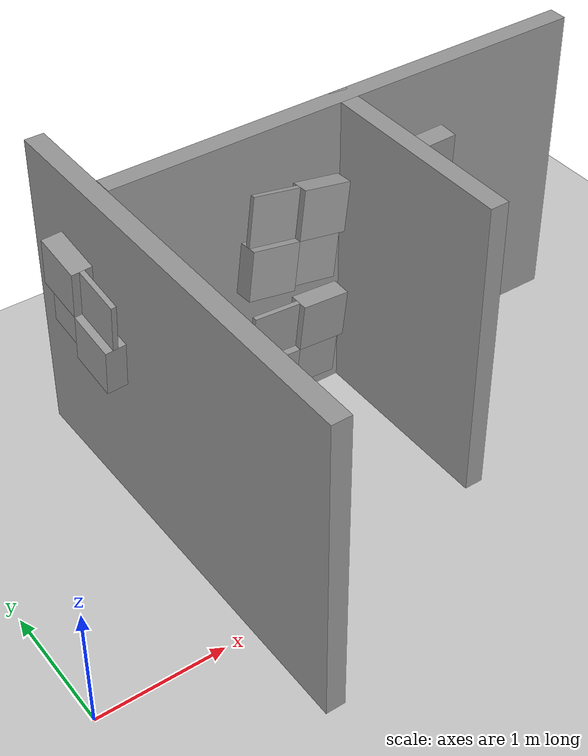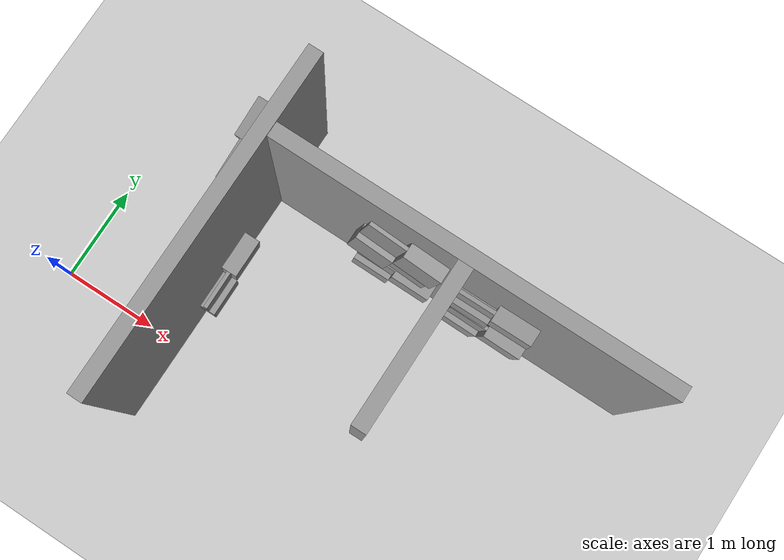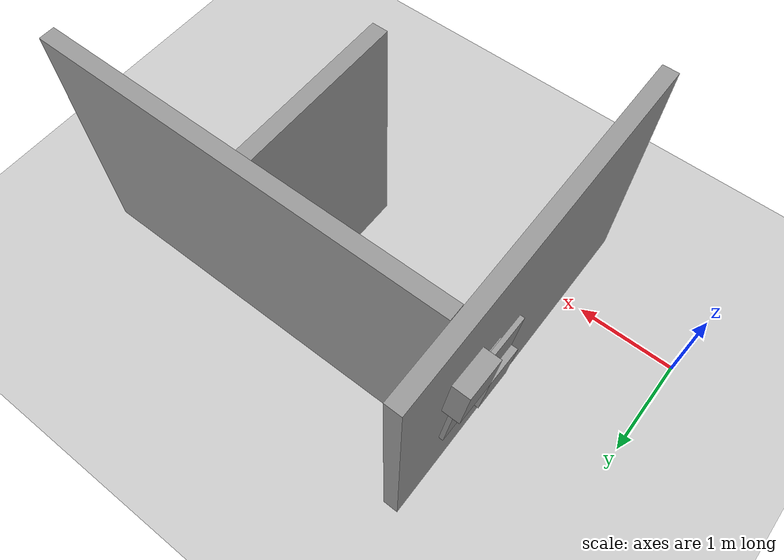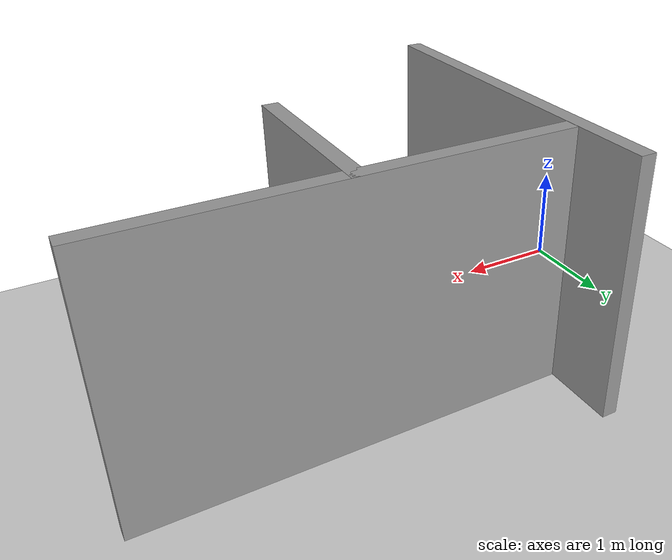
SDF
<sdf version="1.7">
 <world name="default">
  <model name="demo_clean">
   <static>1</static>
   <link name="Wall_11">
    <collision name="Wall_11_Collision">
     <geometry><box><size>4 0.15 2.5</size></box></geometry>
     <pose>0 0 1.25 0 -0 0</pose>
     <surface>
      <friction>
       <ode><mu>1</mu><mu2>1</mu2><fdir1>0 0 0</fdir1><slip1>0</slip1><slip2>0</slip2></ode>
       <torsional>
        <coefficient>1</coefficient>
        <patch_radius>0</patch_radius>
        <surface_radius>0</surface_radius>
        <use_patch_radius>1</use_patch_radius>
        <ode><slip>0</slip></ode>
       </torsional>
      </friction>
      <bounce><restitution_coefficient>0</restitution_coefficient><threshold>1e+06</threshold></bounce>
      <contact>
       <collide_without_contact>0</collide_without_contact>
       <collide_without_contact_bitmask>1</collide_without_contact_bitmask>
       <collide_bitmask>1</collide_bitmask>
       <ode>
        <soft_cfm>0</soft_cfm>
        <soft_erp>0.2</soft_erp>
        <kp>1e+13</kp>
        <kd>1</kd>
        <max_vel>0.01</max_vel>
        <min_depth>0</min_depth>
       </ode>
       <bullet>
        <split_impulse>1</split_impulse>
        <split_impulse_penetration_threshold>-0.01</split_impulse_penetration_threshold>
        <soft_cfm>0</soft_cfm>
        <soft_erp>0.2</soft_erp>
        <kp>1e+13</kp>
        <kd>1</kd>
       </bullet>
      </contact>
     </surface>
    </collision>
    <visual name="Wall_11_Visual">
     <geometry><box><size>4 0.15 2.5</size></box></geometry>
     <material>
      <script><name>Gazebo/Grey</name><uri>file://media/materials/scripts/gazebo.material</uri></script>
      <ambient>1 1 1 1</ambient>
      <shader type="pixel"><normal_map>default</normal_map></shader>
     </material>
     <pose>0 0 1.25 0 -0 0</pose>
    </visual>
    <pose>3.37851 1.89118 0 0 -0 3.14159</pose>
   </link>
   <link name="Wall_27">
    <collision name="Wall_27_Collision">
     <geometry><box><size>3.5 0.15 2.5</size></box></geometry>
     <pose>0 0 1.25 0 -0 0</pose>
     <surface>
      <friction>
       <ode><mu>1</mu><mu2>1</mu2><fdir1>0 0 0</fdir1><slip1>0</slip1><slip2>0</slip2></ode>
       <torsional>
        <coefficient>1</coefficient>
        <patch_radius>0</patch_radius>
        <surface_radius>0</surface_radius>
        <use_patch_radius>1</use_patch_radius>
        <ode><slip>0</slip></ode>
       </torsional>
      </friction>
      <bounce><restitution_coefficient>0</restitution_coefficient><threshold>1e+06</threshold></bounce>
      <contact>
       <collide_without_contact>0</collide_without_contact>
       <collide_without_contact_bitmask>1</collide_without_contact_bitmask>
       <collide_bitmask>1</collide_bitmask>
       <ode>
        <soft_cfm>0</soft_cfm>
        <soft_erp>0.2</soft_erp>
        <kp>1e+13</kp>
        <kd>1</kd>
        <max_vel>0.01</max_vel>
        <min_depth>0</min_depth>
       </ode>
       <bullet>
        <split_impulse>1</split_impulse>
        <split_impulse_penetration_threshold>-0.01</split_impulse_penetration_threshold>
        <soft_cfm>0</soft_cfm>
        <soft_erp>0.2</soft_erp>
        <kp>1e+13</kp>
        <kd>1</kd>
       </bullet>
      </contact>
     </surface>
    </collision>
    <visual name="Wall_27_Visual">
     <geometry><box><size>3.5 0.15 2.5</size></box></geometry>
     <material>
      <script><name>Gazebo/Grey</name><uri>file://media/materials/scripts/gazebo.material</uri></script>
      <ambient>1 1 1 1</ambient>
      <shader type="pixel"><normal_map>default</normal_map></shader>
     </material>
     <pose>0 0 1.25 0 -0 0</pose>
    </visual>
    <pose>1.30016 0.927106 0 0 0 -1.5708</pose>
   </link>
   <link name="Wall_46">
    <collision name="Wall_46_Collision">
     <geometry><box><size>1.75 0.15 2.5</size></box></geometry>
     <pose>0 0 1.25 0 -0 0</pose>
     <surface>
      <friction>
       <ode><mu>1</mu><mu2>1</mu2><fdir1>0 0 0</fdir1><slip1>0</slip1><slip2>0</slip2></ode>
       <torsional>
        <coefficient>1</coefficient>
        <patch_radius>0</patch_radius>
        <surface_radius>0</surface_radius>
        <use_patch_radius>1</use_patch_radius>
        <ode><slip>0</slip></ode>
       </torsional>
      </friction>
      <bounce><restitution_coefficient>0</restitution_coefficient><threshold>1e+06</threshold></bounce>
      <contact>
       <collide_without_contact>0</collide_without_contact>
       <collide_without_contact_bitmask>1</collide_without_contact_bitmask>
       <collide_bitmask>1</collide_bitmask>
       <ode>
        <soft_cfm>0</soft_cfm>
        <soft_erp>0.2</soft_erp>
        <kp>1e+13</kp>
        <kd>1</kd>
        <max_vel>0.01</max_vel>
        <min_depth>0</min_depth>
       </ode>
       <bullet>
        <split_impulse>1</split_impulse>
        <split_impulse_penetration_threshold>-0.01</split_impulse_penetration_threshold>
        <soft_cfm>0</soft_cfm>
        <soft_erp>0.2</soft_erp>
        <kp>1e+13</kp>
        <kd>1</kd>
       </bullet>
      </contact>
     </surface>
    </collision>
    <visual name="Wall_46_Visual">
     <geometry><box><size>1.75 0.15 2.5</size></box></geometry>
     <material>
      <script><name>Gazebo/Grey</name><uri>file://media/materials/scripts/gazebo.material</uri></script>
      <ambient>1 1 1 1</ambient>
      <shader type="pixel"><normal_map>default</normal_map></shader>
     </material>
     <pose>0 0 1.25 0 -0 0</pose>
    </visual>
    <pose>3.33603 1.08929 0 0 0 -1.5708</pose>
   </link>
  </model>
  <model name="ground_plane">
   <static>1</static>
   <link name="link">
    <collision name="collision">
     <geometry><plane><normal>0 0 1</normal><size>100 100</size></plane></geometry>
     <surface>
      <contact><collide_bitmask>65535</collide_bitmask></contact>
      <friction><ode><mu>100</mu><mu2>50</mu2></ode></friction>
     </surface>
    </collision>
    <visual name="visual">
     <cast_shadows>0</cast_shadows>
     <geometry><plane><normal>0 0 1</normal><size>100 100</size></plane></geometry>
     <material>
      <script><uri>file://media/materials/scripts/gazebo.material</uri><name>Gazebo/Grey</name></script>
     </material>
    </visual>
   </link>
  </model>
  <model name="wall_slate_23">
   <static>1</static>
   <link name="link_0">
    <inertial><mass>1</mass></inertial>
    <gravity>0</gravity>
    <visual name="visual">
     <pose>0 0.2 0.2 0 -0 0</pose>
     <geometry><box><size>0.16 0.4 0.4</size></box></geometry>
     <material>
      <lighting>1</lighting>
      <script><uri>file://media/materials/scripts/gazebo.material</uri><name>Gazebo/Grey</name></script>
      <shader type="pixel"><normal_map>__default__</normal_map></shader>
      <ambient>0.3 0.3 0.3 1</ambient>
      <diffuse>0.7 0.7 0.7 1</diffuse>
      <specular>0.01 0.01 0.01 1</specular>
      <emissive>0 0 0 1</emissive>
     </material>
    </visual>
    <visual name="ModelPreview_0::link_0::visual_1">
     <pose>0 0.2 -0.2 0 -0 0</pose>
     <geometry><box><size>0.04 0.4 0.4</size></box></geometry>
     <material>
      <lighting>1</lighting>
      <script><uri>file://media/materials/scripts/gazebo.material</uri><name>Gazebo/Grey</name></script>
      <shader type="pixel"><normal_map>__default__</normal_map></shader>
      <ambient>0.3 0.3 0.3 1</ambient>
      <diffuse>0.7 0.7 0.7 1</diffuse>
      <specular>0.01 0.01 0.01 1</specular>
      <emissive>0 0 0 1</emissive>
     </material>
    </visual>
    <visual name="ModelPreview_0::link_0::visual_2">
     <pose>0 -0.2 0.2 0 -0 0</pose>
     <geometry><box><size>0.04 0.4 0.4</size></box></geometry>
     <material>
      <lighting>1</lighting>
      <script><uri>file://media/materials/scripts/gazebo.material</uri><name>Gazebo/Grey</name></script>
      <shader type="pixel"><normal_map>__default__</normal_map></shader>
      <ambient>0.3 0.3 0.3 1</ambient>
      <diffuse>0.7 0.7 0.7 1</diffuse>
      <specular>0.01 0.01 0.01 1</specular>
      <emissive>0 0 0 1</emissive>
     </material>
    </visual>
    <visual name="ModelPreview_0::link_0::visual_3">
     <pose>0 -0.2 -0.2 0 -0 0</pose>
     <geometry><box><size>0.16 0.4 0.4</size></box></geometry>
     <material>
      <lighting>1</lighting>
      <script><uri>file://media/materials/scripts/gazebo.material</uri><name>Gazebo/Grey</name></script>
      <shader type="pixel"><normal_map>__default__</normal_map></shader>
      <ambient>0.3 0.3 0.3 1</ambient>
      <diffuse>0.7 0.7 0.7 1</diffuse>
      <specular>0.01 0.01 0.01 1</specular>
      <emissive>0 0 0 1</emissive>
     </material>
    </visual>
    <collision name="collision_2">
     <pose>0 -0.2 0.2 0 -0 0</pose>
     <geometry><box><size>0.04 0.4 0.4</size></box></geometry>
     <surface>
      <friction>
       <ode><mu>1</mu><mu2>1</mu2><fdir1>0 0 0</fdir1><slip1>0</slip1><slip2>0</slip2></ode>
       <torsional>
        <coefficient>1</coefficient>
        <patch_radius>0</patch_radius>
        <surface_radius>0</surface_radius>
        <use_patch_radius>1</use_patch_radius>
        <ode><slip>0</slip></ode>
       </torsional>
      </friction>
      <bounce><restitution_coefficient>0</restitution_coefficient><threshold>1e+06</threshold></bounce>
      <contact>
       <collide_without_contact>0</collide_without_contact>
       <collide_without_contact_bitmask>1</collide_without_contact_bitmask>
       <collide_bitmask>1</collide_bitmask>
       <ode>
        <soft_cfm>0</soft_cfm>
        <soft_erp>0.2</soft_erp>
        <kp>1e+13</kp>
        <kd>1</kd>
        <max_vel>0.01</max_vel>
        <min_depth>0</min_depth>
       </ode>
       <bullet>
        <split_impulse>1</split_impulse>
        <split_impulse_penetration_threshold>-0.01</split_impulse_penetration_threshold>
        <soft_cfm>0</soft_cfm>
        <soft_erp>0.2</soft_erp>
        <kp>1e+13</kp>
        <kd>1</kd>
       </bullet>
      </contact>
     </surface>
    </collision>
    <collision name="collision_1">
     <pose>0 0.2 -0.2 0 -0 0</pose>
     <geometry><box><size>0.04 0.4 0.4</size></box></geometry>
     <surface>
      <friction>
       <ode><mu>1</mu><mu2>1</mu2><fdir1>0 0 0</fdir1><slip1>0</slip1><slip2>0</slip2></ode>
       <torsional>
        <coefficient>1</coefficient>
        <patch_radius>0</patch_radius>
        <surface_radius>0</surface_radius>
        <use_patch_radius>1</use_patch_radius>
        <ode><slip>0</slip></ode>
       </torsional>
      </friction>
      <bounce><restitution_coefficient>0</restitution_coefficient><threshold>1e+06</threshold></bounce>
      <contact>
       <collide_without_contact>0</collide_without_contact>
       <collide_without_contact_bitmask>1</collide_without_contact_bitmask>
       <collide_bitmask>1</collide_bitmask>
       <ode>
        <soft_cfm>0</soft_cfm>
        <soft_erp>0.2</soft_erp>
        <kp>1e+13</kp>
        <kd>1</kd>
        <max_vel>0.01</max_vel>
        <min_depth>0</min_depth>
       </ode>
       <bullet>
        <split_impulse>1</split_impulse>
        <split_impulse_penetration_threshold>-0.01</split_impulse_penetration_threshold>
        <soft_cfm>0</soft_cfm>
        <soft_erp>0.2</soft_erp>
        <kp>1e+13</kp>
        <kd>1</kd>
       </bullet>
      </contact>
     </surface>
    </collision>
    <collision name="collision_4">
     <pose>0 0.2 0.2 0 -0 0</pose>
     <geometry><box><size>0.16 0.4 0.4</size></box></geometry>
     <surface>
      <friction>
       <ode><mu>1</mu><mu2>1</mu2><fdir1>0 0 0</fdir1><slip1>0</slip1><slip2>0</slip2></ode>
       <torsional>
        <coefficient>1</coefficient>
        <patch_radius>0</patch_radius>
        <surface_radius>0</surface_radius>
        <use_patch_radius>1</use_patch_radius>
        <ode><slip>0</slip></ode>
       </torsional>
      </friction>
      <bounce><restitution_coefficient>0</restitution_coefficient><threshold>1e+06</threshold></bounce>
      <contact>
       <collide_without_contact>0</collide_without_contact>
       <collide_without_contact_bitmask>1</collide_without_contact_bitmask>
       <collide_bitmask>1</collide_bitmask>
       <ode>
        <soft_cfm>0</soft_cfm>
        <soft_erp>0.2</soft_erp>
        <kp>1e+13</kp>
        <kd>1</kd>
        <max_vel>0.01</max_vel>
        <min_depth>0</min_depth>
       </ode>
       <bullet>
        <split_impulse>1</split_impulse>
        <split_impulse_penetration_threshold>-0.01</split_impulse_penetration_threshold>
        <soft_cfm>0</soft_cfm>
        <soft_erp>0.2</soft_erp>
        <kp>1e+13</kp>
        <kd>1</kd>
       </bullet>
      </contact>
     </surface>
    </collision>
    <collision name="collision_3">
     <pose>0 -0.2 -0.2 0 -0 0</pose>
     <geometry><box><size>0.16 0.4 0.4</size></box></geometry>
     <surface>
      <friction>
       <ode><mu>1</mu><mu2>1</mu2><fdir1>0 0 0</fdir1><slip1>0</slip1><slip2>0</slip2></ode>
       <torsional>
        <coefficient>1</coefficient>
        <patch_radius>0</patch_radius>
        <surface_radius>0</surface_radius>
        <use_patch_radius>1</use_patch_radius>
        <ode><slip>0</slip></ode>
       </torsional>
      </friction>
      <bounce><restitution_coefficient>0</restitution_coefficient><threshold>1e+06</threshold></bounce>
      <contact>
       <collide_without_contact>0</collide_without_contact>
       <collide_without_contact_bitmask>1</collide_without_contact_bitmask>
       <collide_bitmask>1</collide_bitmask>
       <ode>
        <soft_cfm>0</soft_cfm>
        <soft_erp>0.2</soft_erp>
        <kp>1e+13</kp>
        <kd>1</kd>
        <max_vel>0.01</max_vel>
        <min_depth>0</min_depth>
       </ode>
       <bullet>
        <split_impulse>1</split_impulse>
        <split_impulse_penetration_threshold>-0.01</split_impulse_penetration_threshold>
        <soft_cfm>0</soft_cfm>
        <soft_erp>0.2</soft_erp>
        <kp>1e+13</kp>
        <kd>1</kd>
       </bullet>
      </contact>
     </surface>
    </collision>
   </link>
   <pose>3.77851 1.71618 0.6 -0.12 0.04 -1.5659</pose>
  </model>
  <model name="wall_slate_34">
   <static>1</static>
   <link name="link_0">
    <inertial><mass>1</mass></inertial>
    <gravity>0</gravity>
    <visual name="visual">
     <pose>0 0.2 0.2 0 -0 0</pose>
     <geometry><box><size>0.16 0.4 0.4</size></box></geometry>
     <material>
      <lighting>1</lighting>
      <script><uri>file://media/materials/scripts/gazebo.material</uri><name>Gazebo/Grey</name></script>
      <shader type="pixel"><normal_map>__default__</normal_map></shader>
      <ambient>0.3 0.3 0.3 1</ambient>
      <diffuse>0.7 0.7 0.7 1</diffuse>
      <specular>0.01 0.01 0.01 1</specular>
      <emissive>0 0 0 1</emissive>
     </material>
    </visual>
    <visual name="ModelPreview_0::link_0::visual_1">
     <pose>0 0.2 -0.2 0 -0 0</pose>
     <geometry><box><size>0.04 0.4 0.4</size></box></geometry>
     <material>
      <lighting>1</lighting>
      <script><uri>file://media/materials/scripts/gazebo.material</uri><name>Gazebo/Grey</name></script>
      <shader type="pixel"><normal_map>__default__</normal_map></shader>
      <ambient>0.3 0.3 0.3 1</ambient>
      <diffuse>0.7 0.7 0.7 1</diffuse>
      <specular>0.01 0.01 0.01 1</specular>
      <emissive>0 0 0 1</emissive>
     </material>
    </visual>
    <visual name="ModelPreview_0::link_0::visual_2">
     <pose>0 -0.2 0.2 0 -0 0</pose>
     <geometry><box><size>0.04 0.4 0.4</size></box></geometry>
     <material>
      <lighting>1</lighting>
      <script><uri>file://media/materials/scripts/gazebo.material</uri><name>Gazebo/Grey</name></script>
      <shader type="pixel"><normal_map>__default__</normal_map></shader>
      <ambient>0.3 0.3 0.3 1</ambient>
      <diffuse>0.7 0.7 0.7 1</diffuse>
      <specular>0.01 0.01 0.01 1</specular>
      <emissive>0 0 0 1</emissive>
     </material>
    </visual>
    <visual name="ModelPreview_0::link_0::visual_3">
     <pose>0 -0.2 -0.2 0 -0 0</pose>
     <geometry><box><size>0.16 0.4 0.4</size></box></geometry>
     <material>
      <lighting>1</lighting>
      <script><uri>file://media/materials/scripts/gazebo.material</uri><name>Gazebo/Grey</name></script>
      <shader type="pixel"><normal_map>__default__</normal_map></shader>
      <ambient>0.3 0.3 0.3 1</ambient>
      <diffuse>0.7 0.7 0.7 1</diffuse>
      <specular>0.01 0.01 0.01 1</specular>
      <emissive>0 0 0 1</emissive>
     </material>
    </visual>
    <collision name="collision_2">
     <pose>0 -0.2 0.2 0 -0 0</pose>
     <geometry><box><size>0.04 0.4 0.4</size></box></geometry>
     <surface>
      <friction>
       <ode><mu>1</mu><mu2>1</mu2><fdir1>0 0 0</fdir1><slip1>0</slip1><slip2>0</slip2></ode>
       <torsional>
        <coefficient>1</coefficient>
        <patch_radius>0</patch_radius>
        <surface_radius>0</surface_radius>
        <use_patch_radius>1</use_patch_radius>
        <ode><slip>0</slip></ode>
       </torsional>
      </friction>
      <bounce><restitution_coefficient>0</restitution_coefficient><threshold>1e+06</threshold></bounce>
      <contact>
       <collide_without_contact>0</collide_without_contact>
       <collide_without_contact_bitmask>1</collide_without_contact_bitmask>
       <collide_bitmask>1</collide_bitmask>
       <ode>
        <soft_cfm>0</soft_cfm>
        <soft_erp>0.2</soft_erp>
        <kp>1e+13</kp>
        <kd>1</kd>
        <max_vel>0.01</max_vel>
        <min_depth>0</min_depth>
       </ode>
       <bullet>
        <split_impulse>1</split_impulse>
        <split_impulse_penetration_threshold>-0.01</split_impulse_penetration_threshold>
        <soft_cfm>0</soft_cfm>
        <soft_erp>0.2</soft_erp>
        <kp>1e+13</kp>
        <kd>1</kd>
       </bullet>
      </contact>
     </surface>
    </collision>
    <collision name="collision_1">
     <pose>0 0.2 -0.2 0 -0 0</pose>
     <geometry><box><size>0.04 0.4 0.4</size></box></geometry>
     <surface>
      <friction>
       <ode><mu>1</mu><mu2>1</mu2><fdir1>0 0 0</fdir1><slip1>0</slip1><slip2>0</slip2></ode>
       <torsional>
        <coefficient>1</coefficient>
        <patch_radius>0</patch_radius>
        <surface_radius>0</surface_radius>
        <use_patch_radius>1</use_patch_radius>
        <ode><slip>0</slip></ode>
       </torsional>
      </friction>
      <bounce><restitution_coefficient>0</restitution_coefficient><threshold>1e+06</threshold></bounce>
      <contact>
       <collide_without_contact>0</collide_without_contact>
       <collide_without_contact_bitmask>1</collide_without_contact_bitmask>
       <collide_bitmask>1</collide_bitmask>
       <ode>
        <soft_cfm>0</soft_cfm>
        <soft_erp>0.2</soft_erp>
        <kp>1e+13</kp>
        <kd>1</kd>
        <max_vel>0.01</max_vel>
        <min_depth>0</min_depth>
       </ode>
       <bullet>
        <split_impulse>1</split_impulse>
        <split_impulse_penetration_threshold>-0.01</split_impulse_penetration_threshold>
        <soft_cfm>0</soft_cfm>
        <soft_erp>0.2</soft_erp>
        <kp>1e+13</kp>
        <kd>1</kd>
       </bullet>
      </contact>
     </surface>
    </collision>
    <collision name="collision_4">
     <pose>0 0.2 0.2 0 -0 0</pose>
     <geometry><box><size>0.16 0.4 0.4</size></box></geometry>
     <surface>
      <friction>
       <ode><mu>1</mu><mu2>1</mu2><fdir1>0 0 0</fdir1><slip1>0</slip1><slip2>0</slip2></ode>
       <torsional>
        <coefficient>1</coefficient>
        <patch_radius>0</patch_radius>
        <surface_radius>0</surface_radius>
        <use_patch_radius>1</use_patch_radius>
        <ode><slip>0</slip></ode>
       </torsional>
      </friction>
      <bounce><restitution_coefficient>0</restitution_coefficient><threshold>1e+06</threshold></bounce>
      <contact>
       <collide_without_contact>0</collide_without_contact>
       <collide_without_contact_bitmask>1</collide_without_contact_bitmask>
       <collide_bitmask>1</collide_bitmask>
       <ode>
        <soft_cfm>0</soft_cfm>
        <soft_erp>0.2</soft_erp>
        <kp>1e+13</kp>
        <kd>1</kd>
        <max_vel>0.01</max_vel>
        <min_depth>0</min_depth>
       </ode>
       <bullet>
        <split_impulse>1</split_impulse>
        <split_impulse_penetration_threshold>-0.01</split_impulse_penetration_threshold>
        <soft_cfm>0</soft_cfm>
        <soft_erp>0.2</soft_erp>
        <kp>1e+13</kp>
        <kd>1</kd>
       </bullet>
      </contact>
     </surface>
    </collision>
    <collision name="collision_3">
     <pose>0 -0.2 -0.2 0 -0 0</pose>
     <geometry><box><size>0.16 0.4 0.4</size></box></geometry>
     <surface>
      <friction>
       <ode><mu>1</mu><mu2>1</mu2><fdir1>0 0 0</fdir1><slip1>0</slip1><slip2>0</slip2></ode>
       <torsional>
        <coefficient>1</coefficient>
        <patch_radius>0</patch_radius>
        <surface_radius>0</surface_radius>
        <use_patch_radius>1</use_patch_radius>
        <ode><slip>0</slip></ode>
       </torsional>
      </friction>
      <bounce><restitution_coefficient>0</restitution_coefficient><threshold>1e+06</threshold></bounce>
      <contact>
       <collide_without_contact>0</collide_without_contact>
       <collide_without_contact_bitmask>1</collide_without_contact_bitmask>
       <collide_bitmask>1</collide_bitmask>
       <ode>
        <soft_cfm>0</soft_cfm>
        <soft_erp>0.2</soft_erp>
        <kp>1e+13</kp>
        <kd>1</kd>
        <max_vel>0.01</max_vel>
        <min_depth>0</min_depth>
       </ode>
       <bullet>
        <split_impulse>1</split_impulse>
        <split_impulse_penetration_threshold>-0.01</split_impulse_penetration_threshold>
        <soft_cfm>0</soft_cfm>
        <soft_erp>0.2</soft_erp>
        <kp>1e+13</kp>
        <kd>1</kd>
       </bullet>
      </contact>
     </surface>
    </collision>
   </link>
   <pose>2.77851 1.71618 0.6 -0.08 0.04 -1.5659</pose>
  </model>
  <model name="wall_slate_39">
   <static>1</static>
   <link name="link_0">
    <inertial><mass>1</mass></inertial>
    <gravity>0</gravity>
    <visual name="visual">
     <pose>0 0.2 0.2 0 -0 0</pose>
     <geometry><box><size>0.16 0.4 0.4</size></box></geometry>
     <material>
      <lighting>1</lighting>
      <script><uri>file://media/materials/scripts/gazebo.material</uri><name>Gazebo/Grey</name></script>
      <shader type="pixel"><normal_map>__default__</normal_map></shader>
      <ambient>0.3 0.3 0.3 1</ambient>
      <diffuse>0.7 0.7 0.7 1</diffuse>
      <specular>0.01 0.01 0.01 1</specular>
      <emissive>0 0 0 1</emissive>
     </material>
    </visual>
    <visual name="ModelPreview_0::link_0::visual_1">
     <pose>0 0.2 -0.2 0 -0 0</pose>
     <geometry><box><size>0.04 0.4 0.4</size></box></geometry>
     <material>
      <lighting>1</lighting>
      <script><uri>file://media/materials/scripts/gazebo.material</uri><name>Gazebo/Grey</name></script>
      <shader type="pixel"><normal_map>__default__</normal_map></shader>
      <ambient>0.3 0.3 0.3 1</ambient>
      <diffuse>0.7 0.7 0.7 1</diffuse>
      <specular>0.01 0.01 0.01 1</specular>
      <emissive>0 0 0 1</emissive>
     </material>
    </visual>
    <visual name="ModelPreview_0::link_0::visual_2">
     <pose>0 -0.2 0.2 0 -0 0</pose>
     <geometry><box><size>0.04 0.4 0.4</size></box></geometry>
     <material>
      <lighting>1</lighting>
      <script><uri>file://media/materials/scripts/gazebo.material</uri><name>Gazebo/Grey</name></script>
      <shader type="pixel"><normal_map>__default__</normal_map></shader>
      <ambient>0.3 0.3 0.3 1</ambient>
      <diffuse>0.7 0.7 0.7 1</diffuse>
      <specular>0.01 0.01 0.01 1</specular>
      <emissive>0 0 0 1</emissive>
     </material>
    </visual>
    <visual name="ModelPreview_0::link_0::visual_3">
     <pose>0 -0.2 -0.2 0 -0 0</pose>
     <geometry><box><size>0.16 0.4 0.4</size></box></geometry>
     <material>
      <lighting>1</lighting>
      <script><uri>file://media/materials/scripts/gazebo.material</uri><name>Gazebo/Grey</name></script>
      <shader type="pixel"><normal_map>__default__</normal_map></shader>
      <ambient>0.3 0.3 0.3 1</ambient>
      <diffuse>0.7 0.7 0.7 1</diffuse>
      <specular>0.01 0.01 0.01 1</specular>
      <emissive>0 0 0 1</emissive>
     </material>
    </visual>
    <collision name="collision_2">
     <pose>0 -0.2 0.2 0 -0 0</pose>
     <geometry><box><size>0.04 0.4 0.4</size></box></geometry>
     <surface>
      <friction>
       <ode><mu>1</mu><mu2>1</mu2><fdir1>0 0 0</fdir1><slip1>0</slip1><slip2>0</slip2></ode>
       <torsional>
        <coefficient>1</coefficient>
        <patch_radius>0</patch_radius>
        <surface_radius>0</surface_radius>
        <use_patch_radius>1</use_patch_radius>
        <ode><slip>0</slip></ode>
       </torsional>
      </friction>
      <bounce><restitution_coefficient>0</restitution_coefficient><threshold>1e+06</threshold></bounce>
      <contact>
       <collide_without_contact>0</collide_without_contact>
       <collide_without_contact_bitmask>1</collide_without_contact_bitmask>
       <collide_bitmask>1</collide_bitmask>
       <ode>
        <soft_cfm>0</soft_cfm>
        <soft_erp>0.2</soft_erp>
        <kp>1e+13</kp>
        <kd>1</kd>
        <max_vel>0.01</max_vel>
        <min_depth>0</min_depth>
       </ode>
       <bullet>
        <split_impulse>1</split_impulse>
        <split_impulse_penetration_threshold>-0.01</split_impulse_penetration_threshold>
        <soft_cfm>0</soft_cfm>
        <soft_erp>0.2</soft_erp>
        <kp>1e+13</kp>
        <kd>1</kd>
       </bullet>
      </contact>
     </surface>
    </collision>
    <collision name="collision_1">
     <pose>0 0.2 -0.2 0 -0 0</pose>
     <geometry><box><size>0.04 0.4 0.4</size></box></geometry>
     <surface>
      <friction>
       <ode><mu>1</mu><mu2>1</mu2><fdir1>0 0 0</fdir1><slip1>0</slip1><slip2>0</slip2></ode>
       <torsional>
        <coefficient>1</coefficient>
        <patch_radius>0</patch_radius>
        <surface_radius>0</surface_radius>
        <use_patch_radius>1</use_patch_radius>
        <ode><slip>0</slip></ode>
       </torsional>
      </friction>
      <bounce><restitution_coefficient>0</restitution_coefficient><threshold>1e+06</threshold></bounce>
      <contact>
       <collide_without_contact>0</collide_without_contact>
       <collide_without_contact_bitmask>1</collide_without_contact_bitmask>
       <collide_bitmask>1</collide_bitmask>
       <ode>
        <soft_cfm>0</soft_cfm>
        <soft_erp>0.2</soft_erp>
        <kp>1e+13</kp>
        <kd>1</kd>
        <max_vel>0.01</max_vel>
        <min_depth>0</min_depth>
       </ode>
       <bullet>
        <split_impulse>1</split_impulse>
        <split_impulse_penetration_threshold>-0.01</split_impulse_penetration_threshold>
        <soft_cfm>0</soft_cfm>
        <soft_erp>0.2</soft_erp>
        <kp>1e+13</kp>
        <kd>1</kd>
       </bullet>
      </contact>
     </surface>
    </collision>
    <collision name="collision_4">
     <pose>0 0.2 0.2 0 -0 0</pose>
     <geometry><box><size>0.16 0.4 0.4</size></box></geometry>
     <surface>
      <friction>
       <ode><mu>1</mu><mu2>1</mu2><fdir1>0 0 0</fdir1><slip1>0</slip1><slip2>0</slip2></ode>
       <torsional>
        <coefficient>1</coefficient>
        <patch_radius>0</patch_radius>
        <surface_radius>0</surface_radius>
        <use_patch_radius>1</use_patch_radius>
        <ode><slip>0</slip></ode>
       </torsional>
      </friction>
      <bounce><restitution_coefficient>0</restitution_coefficient><threshold>1e+06</threshold></bounce>
      <contact>
       <collide_without_contact>0</collide_without_contact>
       <collide_without_contact_bitmask>1</collide_without_contact_bitmask>
       <collide_bitmask>1</collide_bitmask>
       <ode>
        <soft_cfm>0</soft_cfm>
        <soft_erp>0.2</soft_erp>
        <kp>1e+13</kp>
        <kd>1</kd>
        <max_vel>0.01</max_vel>
        <min_depth>0</min_depth>
       </ode>
       <bullet>
        <split_impulse>1</split_impulse>
        <split_impulse_penetration_threshold>-0.01</split_impulse_penetration_threshold>
        <soft_cfm>0</soft_cfm>
        <soft_erp>0.2</soft_erp>
        <kp>1e+13</kp>
        <kd>1</kd>
       </bullet>
      </contact>
     </surface>
    </collision>
    <collision name="collision_3">
     <pose>0 -0.2 -0.2 0 -0 0</pose>
     <geometry><box><size>0.16 0.4 0.4</size></box></geometry>
     <surface>
      <friction>
       <ode><mu>1</mu><mu2>1</mu2><fdir1>0 0 0</fdir1><slip1>0</slip1><slip2>0</slip2></ode>
       <torsional>
        <coefficient>1</coefficient>
        <patch_radius>0</patch_radius>
        <surface_radius>0</surface_radius>
        <use_patch_radius>1</use_patch_radius>
        <ode><slip>0</slip></ode>
       </torsional>
      </friction>
      <bounce><restitution_coefficient>0</restitution_coefficient><threshold>1e+06</threshold></bounce>
      <contact>
       <collide_without_contact>0</collide_without_contact>
       <collide_without_contact_bitmask>1</collide_without_contact_bitmask>
       <collide_bitmask>1</collide_bitmask>
       <ode>
        <soft_cfm>0</soft_cfm>
        <soft_erp>0.2</soft_erp>
        <kp>1e+13</kp>
        <kd>1</kd>
        <max_vel>0.01</max_vel>
        <min_depth>0</min_depth>
       </ode>
       <bullet>
        <split_impulse>1</split_impulse>
        <split_impulse_penetration_threshold>-0.01</split_impulse_penetration_threshold>
        <soft_cfm>0</soft_cfm>
        <soft_erp>0.2</soft_erp>
        <kp>1e+13</kp>
        <kd>1</kd>
       </bullet>
      </contact>
     </surface>
    </collision>
   </link>
   <pose>2.77851 1.71618 1.6 -0.18 -0.08 -1.5659</pose>
  </model>
  <model name="wall_slate_47">
   <static>1</static>
   <link name="link_0">
    <inertial><mass>1</mass></inertial>
    <gravity>0</gravity>
    <visual name="visual">
     <pose>0 0.2 0.2 0 -0 0</pose>
     <geometry><box><size>0.16 0.4 0.4</size></box></geometry>
     <material>
      <lighting>1</lighting>
      <script><uri>file://media/materials/scripts/gazebo.material</uri><name>Gazebo/Grey</name></script>
      <shader type="pixel"><normal_map>__default__</normal_map></shader>
      <ambient>0.3 0.3 0.3 1</ambient>
      <diffuse>0.7 0.7 0.7 1</diffuse>
      <specular>0.01 0.01 0.01 1</specular>
      <emissive>0 0 0 1</emissive>
     </material>
    </visual>
    <visual name="ModelPreview_0::link_0::visual_1">
     <pose>0 0.2 -0.2 0 -0 0</pose>
     <geometry><box><size>0.04 0.4 0.4</size></box></geometry>
     <material>
      <lighting>1</lighting>
      <script><uri>file://media/materials/scripts/gazebo.material</uri><name>Gazebo/Grey</name></script>
      <shader type="pixel"><normal_map>__default__</normal_map></shader>
      <ambient>0.3 0.3 0.3 1</ambient>
      <diffuse>0.7 0.7 0.7 1</diffuse>
      <specular>0.01 0.01 0.01 1</specular>
      <emissive>0 0 0 1</emissive>
     </material>
    </visual>
    <visual name="ModelPreview_0::link_0::visual_2">
     <pose>0 -0.2 0.2 0 -0 0</pose>
     <geometry><box><size>0.04 0.4 0.4</size></box></geometry>
     <material>
      <lighting>1</lighting>
      <script><uri>file://media/materials/scripts/gazebo.material</uri><name>Gazebo/Grey</name></script>
      <shader type="pixel"><normal_map>__default__</normal_map></shader>
      <ambient>0.3 0.3 0.3 1</ambient>
      <diffuse>0.7 0.7 0.7 1</diffuse>
      <specular>0.01 0.01 0.01 1</specular>
      <emissive>0 0 0 1</emissive>
     </material>
    </visual>
    <visual name="ModelPreview_0::link_0::visual_3">
     <pose>0 -0.2 -0.2 0 -0 0</pose>
     <geometry><box><size>0.16 0.4 0.4</size></box></geometry>
     <material>
      <lighting>1</lighting>
      <script><uri>file://media/materials/scripts/gazebo.material</uri><name>Gazebo/Grey</name></script>
      <shader type="pixel"><normal_map>__default__</normal_map></shader>
      <ambient>0.3 0.3 0.3 1</ambient>
      <diffuse>0.7 0.7 0.7 1</diffuse>
      <specular>0.01 0.01 0.01 1</specular>
      <emissive>0 0 0 1</emissive>
     </material>
    </visual>
    <collision name="collision_2">
     <pose>0 -0.2 0.2 0 -0 0</pose>
     <geometry><box><size>0.04 0.4 0.4</size></box></geometry>
     <surface>
      <friction>
       <ode><mu>1</mu><mu2>1</mu2><fdir1>0 0 0</fdir1><slip1>0</slip1><slip2>0</slip2></ode>
       <torsional>
        <coefficient>1</coefficient>
        <patch_radius>0</patch_radius>
        <surface_radius>0</surface_radius>
        <use_patch_radius>1</use_patch_radius>
        <ode><slip>0</slip></ode>
       </torsional>
      </friction>
      <bounce><restitution_coefficient>0</restitution_coefficient><threshold>1e+06</threshold></bounce>
      <contact>
       <collide_without_contact>0</collide_without_contact>
       <collide_without_contact_bitmask>1</collide_without_contact_bitmask>
       <collide_bitmask>1</collide_bitmask>
       <ode>
        <soft_cfm>0</soft_cfm>
        <soft_erp>0.2</soft_erp>
        <kp>1e+13</kp>
        <kd>1</kd>
        <max_vel>0.01</max_vel>
        <min_depth>0</min_depth>
       </ode>
       <bullet>
        <split_impulse>1</split_impulse>
        <split_impulse_penetration_threshold>-0.01</split_impulse_penetration_threshold>
        <soft_cfm>0</soft_cfm>
        <soft_erp>0.2</soft_erp>
        <kp>1e+13</kp>
        <kd>1</kd>
       </bullet>
      </contact>
     </surface>
    </collision>
    <collision name="collision_1">
     <pose>0 0.2 -0.2 0 -0 0</pose>
     <geometry><box><size>0.04 0.4 0.4</size></box></geometry>
     <surface>
      <friction>
       <ode><mu>1</mu><mu2>1</mu2><fdir1>0 0 0</fdir1><slip1>0</slip1><slip2>0</slip2></ode>
       <torsional>
        <coefficient>1</coefficient>
        <patch_radius>0</patch_radius>
        <surface_radius>0</surface_radius>
        <use_patch_radius>1</use_patch_radius>
        <ode><slip>0</slip></ode>
       </torsional>
      </friction>
      <bounce><restitution_coefficient>0</restitution_coefficient><threshold>1e+06</threshold></bounce>
      <contact>
       <collide_without_contact>0</collide_without_contact>
       <collide_without_contact_bitmask>1</collide_without_contact_bitmask>
       <collide_bitmask>1</collide_bitmask>
       <ode>
        <soft_cfm>0</soft_cfm>
        <soft_erp>0.2</soft_erp>
        <kp>1e+13</kp>
        <kd>1</kd>
        <max_vel>0.01</max_vel>
        <min_depth>0</min_depth>
       </ode>
       <bullet>
        <split_impulse>1</split_impulse>
        <split_impulse_penetration_threshold>-0.01</split_impulse_penetration_threshold>
        <soft_cfm>0</soft_cfm>
        <soft_erp>0.2</soft_erp>
        <kp>1e+13</kp>
        <kd>1</kd>
       </bullet>
      </contact>
     </surface>
    </collision>
    <collision name="collision_4">
     <pose>0 0.2 0.2 0 -0 0</pose>
     <geometry><box><size>0.16 0.4 0.4</size></box></geometry>
     <surface>
      <friction>
       <ode><mu>1</mu><mu2>1</mu2><fdir1>0 0 0</fdir1><slip1>0</slip1><slip2>0</slip2></ode>
       <torsional>
        <coefficient>1</coefficient>
        <patch_radius>0</patch_radius>
        <surface_radius>0</surface_radius>
        <use_patch_radius>1</use_patch_radius>
        <ode><slip>0</slip></ode>
       </torsional>
      </friction>
      <bounce><restitution_coefficient>0</restitution_coefficient><threshold>1e+06</threshold></bounce>
      <contact>
       <collide_without_contact>0</collide_without_contact>
       <collide_without_contact_bitmask>1</collide_without_contact_bitmask>
       <collide_bitmask>1</collide_bitmask>
       <ode>
        <soft_cfm>0</soft_cfm>
        <soft_erp>0.2</soft_erp>
        <kp>1e+13</kp>
        <kd>1</kd>
        <max_vel>0.01</max_vel>
        <min_depth>0</min_depth>
       </ode>
       <bullet>
        <split_impulse>1</split_impulse>
        <split_impulse_penetration_threshold>-0.01</split_impulse_penetration_threshold>
        <soft_cfm>0</soft_cfm>
        <soft_erp>0.2</soft_erp>
        <kp>1e+13</kp>
        <kd>1</kd>
       </bullet>
      </contact>
     </surface>
    </collision>
    <collision name="collision_3">
     <pose>0 -0.2 -0.2 0 -0 0</pose>
     <geometry><box><size>0.16 0.4 0.4</size></box></geometry>
     <surface>
      <friction>
       <ode><mu>1</mu><mu2>1</mu2><fdir1>0 0 0</fdir1><slip1>0</slip1><slip2>0</slip2></ode>
       <torsional>
        <coefficient>1</coefficient>
        <patch_radius>0</patch_radius>
        <surface_radius>0</surface_radius>
        <use_patch_radius>1</use_patch_radius>
        <ode><slip>0</slip></ode>
       </torsional>
      </friction>
      <bounce><restitution_coefficient>0</restitution_coefficient><threshold>1e+06</threshold></bounce>
      <contact>
       <collide_without_contact>0</collide_without_contact>
       <collide_without_contact_bitmask>1</collide_without_contact_bitmask>
       <collide_bitmask>1</collide_bitmask>
       <ode>
        <soft_cfm>0</soft_cfm>
        <soft_erp>0.2</soft_erp>
        <kp>1e+13</kp>
        <kd>1</kd>
        <max_vel>0.01</max_vel>
        <min_depth>0</min_depth>
       </ode>
       <bullet>
        <split_impulse>1</split_impulse>
        <split_impulse_penetration_threshold>-0.01</split_impulse_penetration_threshold>
        <soft_cfm>0</soft_cfm>
        <soft_erp>0.2</soft_erp>
        <kp>1e+13</kp>
        <kd>1</kd>
       </bullet>
      </contact>
     </surface>
    </collision>
   </link>
   <pose>1.12516 1.82711 1.6 0.14 -0.04 0.0049</pose>
  </model>
  <model name="wall_slate_57">
   <static>1</static>
   <link name="link_0">
    <inertial><mass>1</mass></inertial>
    <gravity>0</gravity>
    <visual name="visual">
     <pose>0 0.2 0.2 0 -0 0</pose>
     <geometry><box><size>0.16 0.4 0.4</size></box></geometry>
     <material>
      <lighting>1</lighting>
      <script><uri>file://media/materials/scripts/gazebo.material</uri><name>Gazebo/Grey</name></script>
      <shader type="pixel"><normal_map>__default__</normal_map></shader>
      <ambient>0.3 0.3 0.3 1</ambient>
      <diffuse>0.7 0.7 0.7 1</diffuse>
      <specular>0.01 0.01 0.01 1</specular>
      <emissive>0 0 0 1</emissive>
     </material>
    </visual>
    <visual name="ModelPreview_0::link_0::visual_1">
     <pose>0 0.2 -0.2 0 -0 0</pose>
     <geometry><box><size>0.04 0.4 0.4</size></box></geometry>
     <material>
      <lighting>1</lighting>
      <script><uri>file://media/materials/scripts/gazebo.material</uri><name>Gazebo/Grey</name></script>
      <shader type="pixel"><normal_map>__default__</normal_map></shader>
      <ambient>0.3 0.3 0.3 1</ambient>
      <diffuse>0.7 0.7 0.7 1</diffuse>
      <specular>0.01 0.01 0.01 1</specular>
      <emissive>0 0 0 1</emissive>
     </material>
    </visual>
    <visual name="ModelPreview_0::link_0::visual_2">
     <pose>0 -0.2 0.2 0 -0 0</pose>
     <geometry><box><size>0.04 0.4 0.4</size></box></geometry>
     <material>
      <lighting>1</lighting>
      <script><uri>file://media/materials/scripts/gazebo.material</uri><name>Gazebo/Grey</name></script>
      <shader type="pixel"><normal_map>__default__</normal_map></shader>
      <ambient>0.3 0.3 0.3 1</ambient>
      <diffuse>0.7 0.7 0.7 1</diffuse>
      <specular>0.01 0.01 0.01 1</specular>
      <emissive>0 0 0 1</emissive>
     </material>
    </visual>
    <visual name="ModelPreview_0::link_0::visual_3">
     <pose>0 -0.2 -0.2 0 -0 0</pose>
     <geometry><box><size>0.16 0.4 0.4</size></box></geometry>
     <material>
      <lighting>1</lighting>
      <script><uri>file://media/materials/scripts/gazebo.material</uri><name>Gazebo/Grey</name></script>
      <shader type="pixel"><normal_map>__default__</normal_map></shader>
      <ambient>0.3 0.3 0.3 1</ambient>
      <diffuse>0.7 0.7 0.7 1</diffuse>
      <specular>0.01 0.01 0.01 1</specular>
      <emissive>0 0 0 1</emissive>
     </material>
    </visual>
    <collision name="collision_2">
     <pose>0 -0.2 0.2 0 -0 0</pose>
     <geometry><box><size>0.04 0.4 0.4</size></box></geometry>
     <surface>
      <friction>
       <ode><mu>1</mu><mu2>1</mu2><fdir1>0 0 0</fdir1><slip1>0</slip1><slip2>0</slip2></ode>
       <torsional>
        <coefficient>1</coefficient>
        <patch_radius>0</patch_radius>
        <surface_radius>0</surface_radius>
        <use_patch_radius>1</use_patch_radius>
        <ode><slip>0</slip></ode>
       </torsional>
      </friction>
      <bounce><restitution_coefficient>0</restitution_coefficient><threshold>1e+06</threshold></bounce>
      <contact>
       <collide_without_contact>0</collide_without_contact>
       <collide_without_contact_bitmask>1</collide_without_contact_bitmask>
       <collide_bitmask>1</collide_bitmask>
       <ode>
        <soft_cfm>0</soft_cfm>
        <soft_erp>0.2</soft_erp>
        <kp>1e+13</kp>
        <kd>1</kd>
        <max_vel>0.01</max_vel>
        <min_depth>0</min_depth>
       </ode>
       <bullet>
        <split_impulse>1</split_impulse>
        <split_impulse_penetration_threshold>-0.01</split_impulse_penetration_threshold>
        <soft_cfm>0</soft_cfm>
        <soft_erp>0.2</soft_erp>
        <kp>1e+13</kp>
        <kd>1</kd>
       </bullet>
      </contact>
     </surface>
    </collision>
    <collision name="collision_1">
     <pose>0 0.2 -0.2 0 -0 0</pose>
     <geometry><box><size>0.04 0.4 0.4</size></box></geometry>
     <surface>
      <friction>
       <ode><mu>1</mu><mu2>1</mu2><fdir1>0 0 0</fdir1><slip1>0</slip1><slip2>0</slip2></ode>
       <torsional>
        <coefficient>1</coefficient>
        <patch_radius>0</patch_radius>
        <surface_radius>0</surface_radius>
        <use_patch_radius>1</use_patch_radius>
        <ode><slip>0</slip></ode>
       </torsional>
      </friction>
      <bounce><restitution_coefficient>0</restitution_coefficient><threshold>1e+06</threshold></bounce>
      <contact>
       <collide_without_contact>0</collide_without_contact>
       <collide_without_contact_bitmask>1</collide_without_contact_bitmask>
       <collide_bitmask>1</collide_bitmask>
       <ode>
        <soft_cfm>0</soft_cfm>
        <soft_erp>0.2</soft_erp>
        <kp>1e+13</kp>
        <kd>1</kd>
        <max_vel>0.01</max_vel>
        <min_depth>0</min_depth>
       </ode>
       <bullet>
        <split_impulse>1</split_impulse>
        <split_impulse_penetration_threshold>-0.01</split_impulse_penetration_threshold>
        <soft_cfm>0</soft_cfm>
        <soft_erp>0.2</soft_erp>
        <kp>1e+13</kp>
        <kd>1</kd>
       </bullet>
      </contact>
     </surface>
    </collision>
    <collision name="collision_4">
     <pose>0 0.2 0.2 0 -0 0</pose>
     <geometry><box><size>0.16 0.4 0.4</size></box></geometry>
     <surface>
      <friction>
       <ode><mu>1</mu><mu2>1</mu2><fdir1>0 0 0</fdir1><slip1>0</slip1><slip2>0</slip2></ode>
       <torsional>
        <coefficient>1</coefficient>
        <patch_radius>0</patch_radius>
        <surface_radius>0</surface_radius>
        <use_patch_radius>1</use_patch_radius>
        <ode><slip>0</slip></ode>
       </torsional>
      </friction>
      <bounce><restitution_coefficient>0</restitution_coefficient><threshold>1e+06</threshold></bounce>
      <contact>
       <collide_without_contact>0</collide_without_contact>
       <collide_without_contact_bitmask>1</collide_without_contact_bitmask>
       <collide_bitmask>1</collide_bitmask>
       <ode>
        <soft_cfm>0</soft_cfm>
        <soft_erp>0.2</soft_erp>
        <kp>1e+13</kp>
        <kd>1</kd>
        <max_vel>0.01</max_vel>
        <min_depth>0</min_depth>
       </ode>
       <bullet>
        <split_impulse>1</split_impulse>
        <split_impulse_penetration_threshold>-0.01</split_impulse_penetration_threshold>
        <soft_cfm>0</soft_cfm>
        <soft_erp>0.2</soft_erp>
        <kp>1e+13</kp>
        <kd>1</kd>
       </bullet>
      </contact>
     </surface>
    </collision>
    <collision name="collision_3">
     <pose>0 -0.2 -0.2 0 -0 0</pose>
     <geometry><box><size>0.16 0.4 0.4</size></box></geometry>
     <surface>
      <friction>
       <ode><mu>1</mu><mu2>1</mu2><fdir1>0 0 0</fdir1><slip1>0</slip1><slip2>0</slip2></ode>
       <torsional>
        <coefficient>1</coefficient>
        <patch_radius>0</patch_radius>
        <surface_radius>0</surface_radius>
        <use_patch_radius>1</use_patch_radius>
        <ode><slip>0</slip></ode>
       </torsional>
      </friction>
      <bounce><restitution_coefficient>0</restitution_coefficient><threshold>1e+06</threshold></bounce>
      <contact>
       <collide_without_contact>0</collide_without_contact>
       <collide_without_contact_bitmask>1</collide_without_contact_bitmask>
       <collide_bitmask>1</collide_bitmask>
       <ode>
        <soft_cfm>0</soft_cfm>
        <soft_erp>0.2</soft_erp>
        <kp>1e+13</kp>
        <kd>1</kd>
        <max_vel>0.01</max_vel>
        <min_depth>0</min_depth>
       </ode>
       <bullet>
        <split_impulse>1</split_impulse>
        <split_impulse_penetration_threshold>-0.01</split_impulse_penetration_threshold>
        <soft_cfm>0</soft_cfm>
        <soft_erp>0.2</soft_erp>
        <kp>1e+13</kp>
        <kd>1</kd>
       </bullet>
      </contact>
     </surface>
    </collision>
   </link>
   <pose>3.77851 1.71618 1.6 0.02 0.06 -1.5659</pose>
  </model>
  <model name="wall_slate_99">
   <static>1</static>
   <link name="link_0">
    <inertial><mass>1</mass></inertial>
    <gravity>0</gravity>
    <visual name="visual">
     <pose>0 0.2 0.2 0 -0 0</pose>
     <geometry><box><size>0.16 0.4 0.4</size></box></geometry>
     <material>
      <lighting>1</lighting>
      <script><uri>file://media/materials/scripts/gazebo.material</uri><name>Gazebo/Grey</name></script>
      <shader type="pixel"><normal_map>__default__</normal_map></shader>
      <ambient>0.3 0.3 0.3 1</ambient>
      <diffuse>0.7 0.7 0.7 1</diffuse>
      <specular>0.01 0.01 0.01 1</specular>
      <emissive>0 0 0 1</emissive>
     </material>
    </visual>
    <visual name="ModelPreview_0::link_0::visual_1">
     <pose>0 0.2 -0.2 0 -0 0</pose>
     <geometry><box><size>0.04 0.4 0.4</size></box></geometry>
     <material>
      <lighting>1</lighting>
      <script><uri>file://media/materials/scripts/gazebo.material</uri><name>Gazebo/Grey</name></script>
      <shader type="pixel"><normal_map>__default__</normal_map></shader>
      <ambient>0.3 0.3 0.3 1</ambient>
      <diffuse>0.7 0.7 0.7 1</diffuse>
      <specular>0.01 0.01 0.01 1</specular>
      <emissive>0 0 0 1</emissive>
     </material>
    </visual>
    <visual name="ModelPreview_0::link_0::visual_2">
     <pose>0 -0.2 0.2 0 -0 0</pose>
     <geometry><box><size>0.04 0.4 0.4</size></box></geometry>
     <material>
      <lighting>1</lighting>
      <script><uri>file://media/materials/scripts/gazebo.material</uri><name>Gazebo/Grey</name></script>
      <shader type="pixel"><normal_map>__default__</normal_map></shader>
      <ambient>0.3 0.3 0.3 1</ambient>
      <diffuse>0.7 0.7 0.7 1</diffuse>
      <specular>0.01 0.01 0.01 1</specular>
      <emissive>0 0 0 1</emissive>
     </material>
    </visual>
    <visual name="ModelPreview_0::link_0::visual_3">
     <pose>0 -0.2 -0.2 0 -0 0</pose>
     <geometry><box><size>0.16 0.4 0.4</size></box></geometry>
     <material>
      <lighting>1</lighting>
      <script><uri>file://media/materials/scripts/gazebo.material</uri><name>Gazebo/Grey</name></script>
      <shader type="pixel"><normal_map>__default__</normal_map></shader>
      <ambient>0.3 0.3 0.3 1</ambient>
      <diffuse>0.7 0.7 0.7 1</diffuse>
      <specular>0.01 0.01 0.01 1</specular>
      <emissive>0 0 0 1</emissive>
     </material>
    </visual>
    <collision name="collision_2">
     <pose>0 -0.2 0.2 0 -0 0</pose>
     <geometry><box><size>0.04 0.4 0.4</size></box></geometry>
     <surface>
      <friction>
       <ode><mu>1</mu><mu2>1</mu2><fdir1>0 0 0</fdir1><slip1>0</slip1><slip2>0</slip2></ode>
       <torsional>
        <coefficient>1</coefficient>
        <patch_radius>0</patch_radius>
        <surface_radius>0</surface_radius>
        <use_patch_radius>1</use_patch_radius>
        <ode><slip>0</slip></ode>
       </torsional>
      </friction>
      <bounce><restitution_coefficient>0</restitution_coefficient><threshold>1e+06</threshold></bounce>
      <contact>
       <collide_without_contact>0</collide_without_contact>
       <collide_without_contact_bitmask>1</collide_without_contact_bitmask>
       <collide_bitmask>1</collide_bitmask>
       <ode>
        <soft_cfm>0</soft_cfm>
        <soft_erp>0.2</soft_erp>
        <kp>1e+13</kp>
        <kd>1</kd>
        <max_vel>0.01</max_vel>
        <min_depth>0</min_depth>
       </ode>
       <bullet>
        <split_impulse>1</split_impulse>
        <split_impulse_penetration_threshold>-0.01</split_impulse_penetration_threshold>
        <soft_cfm>0</soft_cfm>
        <soft_erp>0.2</soft_erp>
        <kp>1e+13</kp>
        <kd>1</kd>
       </bullet>
      </contact>
     </surface>
    </collision>
    <collision name="collision_1">
     <pose>0 0.2 -0.2 0 -0 0</pose>
     <geometry><box><size>0.04 0.4 0.4</size></box></geometry>
     <surface>
      <friction>
       <ode><mu>1</mu><mu2>1</mu2><fdir1>0 0 0</fdir1><slip1>0</slip1><slip2>0</slip2></ode>
       <torsional>
        <coefficient>1</coefficient>
        <patch_radius>0</patch_radius>
        <surface_radius>0</surface_radius>
        <use_patch_radius>1</use_patch_radius>
        <ode><slip>0</slip></ode>
       </torsional>
      </friction>
      <bounce><restitution_coefficient>0</restitution_coefficient><threshold>1e+06</threshold></bounce>
      <contact>
       <collide_without_contact>0</collide_without_contact>
       <collide_without_contact_bitmask>1</collide_without_contact_bitmask>
       <collide_bitmask>1</collide_bitmask>
       <ode>
        <soft_cfm>0</soft_cfm>
        <soft_erp>0.2</soft_erp>
        <kp>1e+13</kp>
        <kd>1</kd>
        <max_vel>0.01</max_vel>
        <min_depth>0</min_depth>
       </ode>
       <bullet>
        <split_impulse>1</split_impulse>
        <split_impulse_penetration_threshold>-0.01</split_impulse_penetration_threshold>
        <soft_cfm>0</soft_cfm>
        <soft_erp>0.2</soft_erp>
        <kp>1e+13</kp>
        <kd>1</kd>
       </bullet>
      </contact>
     </surface>
    </collision>
    <collision name="collision_4">
     <pose>0 0.2 0.2 0 -0 0</pose>
     <geometry><box><size>0.16 0.4 0.4</size></box></geometry>
     <surface>
      <friction>
       <ode><mu>1</mu><mu2>1</mu2><fdir1>0 0 0</fdir1><slip1>0</slip1><slip2>0</slip2></ode>
       <torsional>
        <coefficient>1</coefficient>
        <patch_radius>0</patch_radius>
        <surface_radius>0</surface_radius>
        <use_patch_radius>1</use_patch_radius>
        <ode><slip>0</slip></ode>
       </torsional>
      </friction>
      <bounce><restitution_coefficient>0</restitution_coefficient><threshold>1e+06</threshold></bounce>
      <contact>
       <collide_without_contact>0</collide_without_contact>
       <collide_without_contact_bitmask>1</collide_without_contact_bitmask>
       <collide_bitmask>1</collide_bitmask>
       <ode>
        <soft_cfm>0</soft_cfm>
        <soft_erp>0.2</soft_erp>
        <kp>1e+13</kp>
        <kd>1</kd>
        <max_vel>0.01</max_vel>
        <min_depth>0</min_depth>
       </ode>
       <bullet>
        <split_impulse>1</split_impulse>
        <split_impulse_penetration_threshold>-0.01</split_impulse_penetration_threshold>
        <soft_cfm>0</soft_cfm>
        <soft_erp>0.2</soft_erp>
        <kp>1e+13</kp>
        <kd>1</kd>
       </bullet>
      </contact>
     </surface>
    </collision>
    <collision name="collision_3">
     <pose>0 -0.2 -0.2 0 -0 0</pose>
     <geometry><box><size>0.16 0.4 0.4</size></box></geometry>
     <surface>
      <friction>
       <ode><mu>1</mu><mu2>1</mu2><fdir1>0 0 0</fdir1><slip1>0</slip1><slip2>0</slip2></ode>
       <torsional>
        <coefficient>1</coefficient>
        <patch_radius>0</patch_radius>
        <surface_radius>0</surface_radius>
        <use_patch_radius>1</use_patch_radius>
        <ode><slip>0</slip></ode>
       </torsional>
      </friction>
      <bounce><restitution_coefficient>0</restitution_coefficient><threshold>1e+06</threshold></bounce>
      <contact>
       <collide_without_contact>0</collide_without_contact>
       <collide_without_contact_bitmask>1</collide_without_contact_bitmask>
       <collide_bitmask>1</collide_bitmask>
       <ode>
        <soft_cfm>0</soft_cfm>
        <soft_erp>0.2</soft_erp>
        <kp>1e+13</kp>
        <kd>1</kd>
        <max_vel>0.01</max_vel>
        <min_depth>0</min_depth>
       </ode>
       <bullet>
        <split_impulse>1</split_impulse>
        <split_impulse_penetration_threshold>-0.01</split_impulse_penetration_threshold>
        <soft_cfm>0</soft_cfm>
        <soft_erp>0.2</soft_erp>
        <kp>1e+13</kp>
        <kd>1</kd>
       </bullet>
      </contact>
     </surface>
    </collision>
   </link>
   <pose>1.47516 0.827107 0.6 0.02 0.08 0.0049</pose>
  </model>
 </world>
</sdf>
